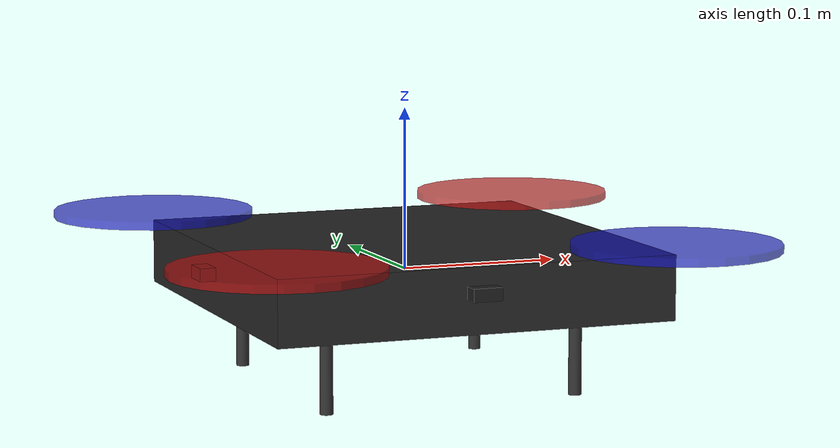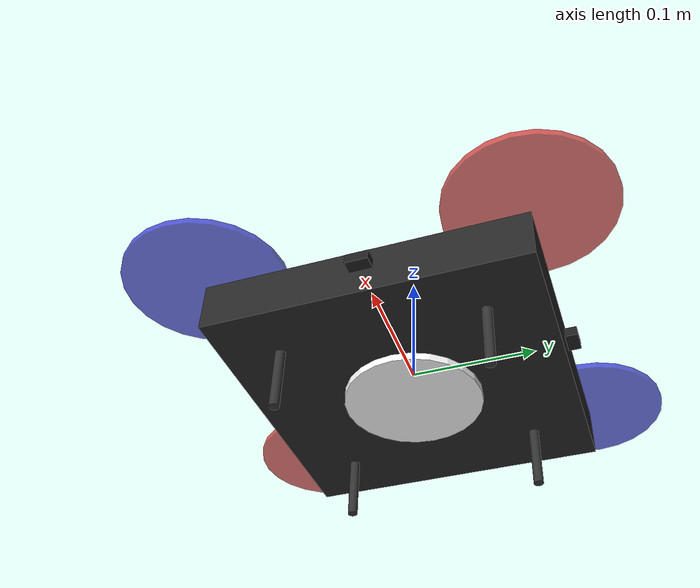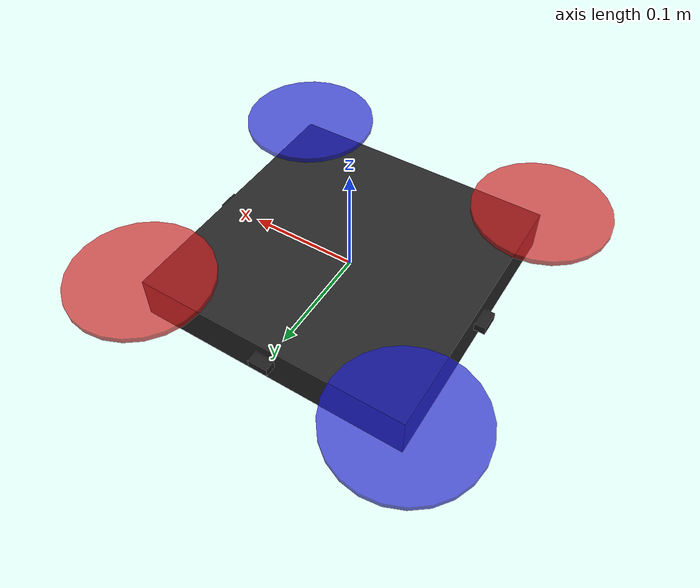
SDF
<?xml version="1.0" ?>
<sdf version="1.6">
  <model name="show_drone">

    <!-- Enable self-collide so rotors don't clip the body -->
    <self_collide>false</self_collide>
    <allow_auto_disable>false</allow_auto_disable>

    <!-- ================================================================
         BODY LINK — main airframe + battery
         ================================================================ -->
    <link name="base_link">
      <pose>0 0 0 0 0 0</pose>

      <!-- Inertia -->
      <inertial>
        <mass>0.85</mass>
        <pose>0 0 0 0 0 0</pose>
        <inertia>
          <ixx>3.2e-3</ixx>
          <ixy>0</ixy>
          <ixz>0</ixz>
          <iyy>3.2e-3</iyy>
          <iyz>0</iyz>
          <izz>5.5e-3</izz>
        </inertia>
      </inertial>

      <!-- Visual: main frame box approximation -->
      <visual name="frame_visual">
        <pose>0 0 0 0 0 0</pose>
        <geometry>
          <box>
            <size>0.25 0.25 0.04</size>
          </box>
        </geometry>
        <material>
          <ambient>0.1 0.1 0.1 1</ambient>
          <diffuse>0.15 0.15 0.15 1</diffuse>
          <specular>0.05 0.05 0.05 1</specular>
        </material>
      </visual>

      <!-- Visual: arm cross (simplified) -->
      <visual name="arm_visual_x">
        <pose>0 0 0.005 0 0 0</pose>
        <geometry>
          <box>
            <size>0.27 0.018 0.008</size>
          </box>
        </geometry>
        <material>
          <ambient>0.08 0.08 0.08 1</ambient>
          <diffuse>0.12 0.12 0.12 1</diffuse>
        </material>
      </visual>
      <visual name="arm_visual_y">
        <pose>0 0 0.005 0 0 1.5708</pose>
        <geometry>
          <box>
            <size>0.27 0.018 0.008</size>
          </box>
        </geometry>
        <material>
          <ambient>0.08 0.08 0.08 1</ambient>
          <diffuse>0.12 0.12 0.12 1</diffuse>
        </material>
      </visual>

      <!-- Collision: simplified box -->
      <collision name="base_collision">
        <pose>0 0 0 0 0 0</pose>
        <geometry>
          <box>
            <size>0.27 0.27 0.07</size>
          </box>
        </geometry>
        <surface>
          <contact>
            <ode>
              <min_depth>0.001</min_depth>
              <kp>1e6</kp>
              <kd>1e3</kd>
            </ode>
          </contact>
          <friction>
            <ode>
              <mu>0.3</mu>
              <mu2>0.3</mu2>
            </ode>
          </friction>
        </surface>
      </collision>

      <!-- IMU sensor -->
      <sensor name="imu_sensor" type="imu">
        <pose>0 0 0 0 0 0</pose>
        <always_on>true</always_on>
        <update_rate>1000</update_rate>
        <visualize>false</visualize>
        <imu>
          <angular_velocity>
            <x>
              <noise type="gaussian">
                <mean>0.0</mean>
                <stddev>2.0e-4</stddev>
                <bias_mean>7.5e-6</bias_mean>
                <bias_stddev>8e-7</bias_stddev>
              </noise>
            </x>
            <y>
              <noise type="gaussian">
                <mean>0.0</mean>
                <stddev>2.0e-4</stddev>
                <bias_mean>7.5e-6</bias_mean>
                <bias_stddev>8e-7</bias_stddev>
              </noise>
            </y>
            <z>
              <noise type="gaussian">
                <mean>0.0</mean>
                <stddev>2.0e-4</stddev>
                <bias_mean>7.5e-6</bias_mean>
                <bias_stddev>8e-7</bias_stddev>
              </noise>
            </z>
          </angular_velocity>
          <linear_acceleration>
            <x>
              <noise type="gaussian">
                <mean>0.0</mean>
                <stddev>0.017</stddev>
                <bias_mean>0.1</bias_mean>
                <bias_stddev>0.001</bias_stddev>
              </noise>
            </x>
            <y>
              <noise type="gaussian">
                <mean>0.0</mean>
                <stddev>0.017</stddev>
                <bias_mean>0.1</bias_mean>
                <bias_stddev>0.001</bias_stddev>
              </noise>
            </y>
            <z>
              <noise type="gaussian">
                <mean>0.0</mean>
                <stddev>0.017</stddev>
                <bias_mean>0.1</bias_mean>
                <bias_stddev>0.001</bias_stddev>
              </noise>
            </z>
          </linear_acceleration>
        </imu>
      </sensor>

      <!-- GPS sensor (RTK-grade noise) -->
      <sensor name="gps" type="gps">
        <pose>0 0 0.02 0 0 0</pose>
        <always_on>true</always_on>
        <update_rate>10</update_rate>
        <visualize>false</visualize>
        <gps>
          <position_sensing>
            <horizontal>
              <noise type="gaussian">
                <mean>0.0</mean>
                <stddev>0.10</stddev>   <!-- 10 cm horizontal RTK -->
              </noise>
            </horizontal>
            <vertical>
              <noise type="gaussian">
                <mean>0.0</mean>
                <stddev>0.15</stddev>   <!-- 15 cm vertical -->
              </noise>
            </vertical>
          </position_sensing>
          <velocity_sensing>
            <horizontal>
              <noise type="gaussian">
                <mean>0.0</mean>
                <stddev>0.05</stddev>
              </noise>
            </horizontal>
            <vertical>
              <noise type="gaussian">
                <mean>0.0</mean>
                <stddev>0.05</stddev>
              </noise>
            </vertical>
          </velocity_sensing>
        </gps>
      </sensor>

    </link>

    <!-- === ROTOR 1: front-right (+x, -y), CW spinning === -->
    <link name="rotor_1">
      <pose>0.125 -0.125 0.025 0 0 0</pose>
      <inertial>
        <mass>0.015</mass>
        <inertia>
          <ixx>9.75e-7</ixx><ixy>0</ixy><ixz>0</ixz>
          <iyy>1.66e-5</iyy><iyz>0</iyz>
          <izz>1.66e-5</izz>
        </inertia>
      </inertial>
      <visual name="rotor_1_visual">
        <pose>0 0 0 0 0 0</pose>
        <geometry>
          <cylinder>
            <length>0.005</length>
            <radius>0.0635</radius>   <!-- 5-inch prop radius -->
          </cylinder>
        </geometry>
        <material>
          <ambient>0.05 0.05 0.5 0.7</ambient>
          <diffuse>0.1 0.1 0.8 0.7</diffuse>
        </material>
      </visual>
      <collision name="rotor_1_collision">
        <pose>0 0 0 0 0 0</pose>
        <geometry>
          <cylinder>
            <length>0.005</length>
            <radius>0.0635</radius>
          </cylinder>
        </geometry>
      </collision>
    </link>

    <joint name="rotor_1_joint" type="revolute">
      <parent>base_link</parent>
      <child>rotor_1</child>
      <axis>
        <xyz>0 0 1</xyz>
        <limit>
          <lower>-1e16</lower>
          <upper>1e16</upper>
        </limit>
        <dynamics>
          <damping>0.004</damping>
        </dynamics>
        <use_parent_model_frame>true</use_parent_model_frame>
      </axis>
    </joint>

    <!-- === ROTOR 2: back-left (-x, +y), CW spinning === -->
    <link name="rotor_2">
      <pose>-0.125 0.125 0.025 0 0 0</pose>
      <inertial>
        <mass>0.015</mass>
        <inertia>
          <ixx>9.75e-7</ixx><ixy>0</ixy><ixz>0</ixz>
          <iyy>1.66e-5</iyy><iyz>0</iyz>
          <izz>1.66e-5</izz>
        </inertia>
      </inertial>
      <visual name="rotor_2_visual">
        <geometry>
          <cylinder>
            <length>0.005</length>
            <radius>0.0635</radius>
          </cylinder>
        </geometry>
        <material>
          <ambient>0.05 0.05 0.5 0.7</ambient>
          <diffuse>0.1 0.1 0.8 0.7</diffuse>
        </material>
      </visual>
      <collision name="rotor_2_collision">
        <geometry>
          <cylinder>
            <length>0.005</length>
            <radius>0.0635</radius>
          </cylinder>
        </geometry>
      </collision>
    </link>

    <joint name="rotor_2_joint" type="revolute">
      <parent>base_link</parent>
      <child>rotor_2</child>
      <axis>
        <xyz>0 0 1</xyz>
        <limit><lower>-1e16</lower><upper>1e16</upper></limit>
        <dynamics><damping>0.004</damping></dynamics>
        <use_parent_model_frame>true</use_parent_model_frame>
      </axis>
    </joint>

    <!-- === ROTOR 3: front-left (+x, +y), CCW spinning === -->
    <link name="rotor_3">
      <pose>0.125 0.125 0.025 0 0 0</pose>
      <inertial>
        <mass>0.015</mass>
        <inertia>
          <ixx>9.75e-7</ixx><ixy>0</ixy><ixz>0</ixz>
          <iyy>1.66e-5</iyy><iyz>0</iyz>
          <izz>1.66e-5</izz>
        </inertia>
      </inertial>
      <visual name="rotor_3_visual">
        <geometry>
          <cylinder>
            <length>0.005</length>
            <radius>0.0635</radius>
          </cylinder>
        </geometry>
        <material>
          <ambient>0.5 0.05 0.05 0.7</ambient>
          <diffuse>0.8 0.1 0.1 0.7</diffuse>
        </material>
      </visual>
      <collision name="rotor_3_collision">
        <geometry>
          <cylinder>
            <length>0.005</length>
            <radius>0.0635</radius>
          </cylinder>
        </geometry>
      </collision>
    </link>

    <joint name="rotor_3_joint" type="revolute">
      <parent>base_link</parent>
      <child>rotor_3</child>
      <axis>
        <xyz>0 0 -1</xyz>   <!-- CCW -->
        <limit><lower>-1e16</lower><upper>1e16</upper></limit>
        <dynamics><damping>0.004</damping></dynamics>
        <use_parent_model_frame>true</use_parent_model_frame>
      </axis>
    </joint>

    <!-- === ROTOR 4: back-right (-x, -y), CCW spinning === -->
    <link name="rotor_4">
      <pose>-0.125 -0.125 0.025 0 0 0</pose>
      <inertial>
        <mass>0.015</mass>
        <inertia>
          <ixx>9.75e-7</ixx><ixy>0</ixy><ixz>0</ixz>
          <iyy>1.66e-5</iyy><iyz>0</iyz>
          <izz>1.66e-5</izz>
        </inertia>
      </inertial>
      <visual name="rotor_4_visual">
        <geometry>
          <cylinder>
            <length>0.005</length>
            <radius>0.0635</radius>
          </cylinder>
        </geometry>
        <material>
          <ambient>0.5 0.05 0.05 0.7</ambient>
          <diffuse>0.8 0.1 0.1 0.7</diffuse>
        </material>
      </visual>
      <collision name="rotor_4_collision">
        <geometry>
          <cylinder>
            <length>0.005</length>
            <radius>0.0635</radius>
          </cylinder>
        </geometry>
      </collision>
    </link>

    <joint name="rotor_4_joint" type="revolute">
      <parent>base_link</parent>
      <child>rotor_4</child>
      <axis>
        <xyz>0 0 -1</xyz>   <!-- CCW -->
        <limit><lower>-1e16</lower><upper>1e16</upper></limit>
        <dynamics><damping>0.004</damping></dynamics>
        <use_parent_model_frame>true</use_parent_model_frame>
      </axis>
    </joint>

    <link name="led_payload">
      <pose>0 0 -0.025 0 0 0</pose>
      <inertial>
        <mass>0.02</mass>
        <inertia>
          <ixx>1.0e-5</ixx><ixy>0</ixy><ixz>0</ixz>
          <iyy>1.0e-5</iyy><iyz>0</iyz>
          <izz>1.8e-5</izz>
        </inertia>
      </inertial>

      <!-- Visual: ring approximated as a thin torus (cylinder in SDF) -->
      <visual name="led_ring_visual">
        <pose>0 0 0 0 0 0</pose>
        <geometry>
          <cylinder>
            <length>0.006</length>
            <radius>0.055</radius>
          </cylinder>
        </geometry>
        <material>
          <!-- Default white; colour is overridden at runtime by the LED plugin -->
          <ambient>1.0 1.0 1.0 1.0</ambient>
          <diffuse>1.0 1.0 1.0 1.0</diffuse>
          <specular>0.5 0.5 0.5 1.0</specular>
          <emissive>1.0 1.0 1.0 1.0</emissive>
        </material>
      </visual>

      <!-- Collision: small disk -->
      <collision name="led_collision">
        <pose>0 0 0 0 0 0</pose>
        <geometry>
          <cylinder>
            <length>0.006</length>
            <radius>0.055</radius>
          </cylinder>
        </geometry>
      </collision>
    </link>

    <joint name="led_joint" type="fixed">
      <parent>base_link</parent>
      <child>led_payload</child>
    </joint>

    <!-- ================================================================
         LANDING GEAR — 4 legs at corners
         ================================================================ -->
    <link name="leg_fl">
      <pose>0.08 0.08 -0.04 0 0 0</pose>
      <inertial><mass>0.005</mass><inertia>
        <ixx>1e-7</ixx><ixy>0</ixy><ixz>0</ixz>
        <iyy>1e-7</iyy><iyz>0</iyz><izz>1e-7</izz>
      </inertia></inertial>
      <visual name="leg_fl_v"><geometry><cylinder>
        <length>0.06</length><radius>0.004</radius>
      </cylinder></geometry><material><ambient>0.2 0.2 0.2 1</ambient></material></visual>
      <collision name="leg_fl_c"><geometry><cylinder>
        <length>0.06</length><radius>0.004</radius>
      </cylinder></geometry>
      <surface><contact><ode><kp>1e6</kp><kd>100</kd></ode></contact></surface>
      </collision>
    </link>
    <joint name="leg_fl_j" type="fixed"><parent>base_link</parent><child>leg_fl</child></joint>

    <link name="leg_fr">
      <pose>0.08 -0.08 -0.04 0 0 0</pose>
      <inertial><mass>0.005</mass><inertia>
        <ixx>1e-7</ixx><ixy>0</ixy><ixz>0</ixz>
        <iyy>1e-7</iyy><iyz>0</iyz><izz>1e-7</izz>
      </inertia></inertial>
      <visual name="leg_fr_v"><geometry><cylinder>
        <length>0.06</length><radius>0.004</radius>
      </cylinder></geometry><material><ambient>0.2 0.2 0.2 1</ambient></material></visual>
      <collision name="leg_fr_c"><geometry><cylinder>
        <length>0.06</length><radius>0.004</radius>
      </cylinder></geometry>
      <surface><contact><ode><kp>1e6</kp><kd>100</kd></ode></contact></surface>
      </collision>
    </link>
    <joint name="leg_fr_j" type="fixed"><parent>base_link</parent><child>leg_fr</child></joint>

    <link name="leg_rl">
      <pose>-0.08 0.08 -0.04 0 0 0</pose>
      <inertial><mass>0.005</mass><inertia>
        <ixx>1e-7</ixx><ixy>0</ixy><ixz>0</ixz>
        <iyy>1e-7</iyy><iyz>0</iyz><izz>1e-7</izz>
      </inertia></inertial>
      <visual name="leg_rl_v"><geometry><cylinder>
        <length>0.06</length><radius>0.004</radius>
      </cylinder></geometry><material><ambient>0.2 0.2 0.2 1</ambient></material></visual>
      <collision name="leg_rl_c"><geometry><cylinder>
        <length>0.06</length><radius>0.004</radius>
      </cylinder></geometry>
      <surface><contact><ode><kp>1e6</kp><kd>100</kd></ode></contact></surface>
      </collision>
    </link>
    <joint name="leg_rl_j" type="fixed"><parent>base_link</parent><child>leg_rl</child></joint>

    <link name="leg_rr">
      <pose>-0.08 -0.08 -0.04 0 0 0</pose>
      <inertial><mass>0.005</mass><inertia>
        <ixx>1e-7</ixx><ixy>0</ixy><ixz>0</ixz>
        <iyy>1e-7</iyy><iyz>0</iyz><izz>1e-7</izz>
      </inertia></inertial>
      <visual name="leg_rr_v"><geometry><cylinder>
        <length>0.06</length><radius>0.004</radius>
      </cylinder></geometry><material><ambient>0.2 0.2 0.2 1</ambient></material></visual>
      <collision name="leg_rr_c"><geometry><cylinder>
        <length>0.06</length><radius>0.004</radius>
      </cylinder></geometry>
      <surface><contact><ode><kp>1e6</kp><kd>100</kd></ode></contact></surface>
      </collision>
    </link>
    <joint name="leg_rr_j" type="fixed"><parent>base_link</parent><child>leg_rr</child></joint>

    <!-- Rotor 1: CW (turning direction = -1) -->
    <plugin name="rotor_1_motor" filename="libgazebo_motor_model.so">
      <robotNamespace></robotNamespace>
      <jointName>rotor_1_joint</jointName>
      <linkName>rotor_1</linkName>
      <turningDirection>cw</turningDirection>
      <timeConstantUp>0.0125</timeConstantUp>
      <timeConstantDown>0.025</timeConstantDown>
      <maxRotVelocity>1047.2</maxRotVelocity>        <!-- ~10,000 RPM in rad/s -->
      <motorConstant>8.54858e-6</motorConstant>
      <momentConstant>1.3677e-7</momentConstant>
      <commandSubTopic>/gazebo/command/motor_speed</commandSubTopic>
      <motorNumber>0</motorNumber>
      <rotorDragCoefficient>8.06428e-5</rotorDragCoefficient>
      <rollingMomentCoefficient>1e-6</rollingMomentCoefficient>
      <motorSpeedPubTopic>/motor_speed/0</motorSpeedPubTopic>
    </plugin>

    <!-- Rotor 2: CW -->
    <plugin name="rotor_2_motor" filename="libgazebo_motor_model.so">
      <robotNamespace></robotNamespace>
      <jointName>rotor_2_joint</jointName>
      <linkName>rotor_2</linkName>
      <turningDirection>cw</turningDirection>
      <timeConstantUp>0.0125</timeConstantUp>
      <timeConstantDown>0.025</timeConstantDown>
      <maxRotVelocity>1047.2</maxRotVelocity>
      <motorConstant>8.54858e-6</motorConstant>
      <momentConstant>1.3677e-7</momentConstant>
      <commandSubTopic>/gazebo/command/motor_speed</commandSubTopic>
      <motorNumber>1</motorNumber>
      <rotorDragCoefficient>8.06428e-5</rotorDragCoefficient>
      <rollingMomentCoefficient>1e-6</rollingMomentCoefficient>
      <motorSpeedPubTopic>/motor_speed/1</motorSpeedPubTopic>
    </plugin>

    <!-- Rotor 3: CCW -->
    <plugin name="rotor_3_motor" filename="libgazebo_motor_model.so">
      <robotNamespace></robotNamespace>
      <jointName>rotor_3_joint</jointName>
      <linkName>rotor_3</linkName>
      <turningDirection>ccw</turningDirection>
      <timeConstantUp>0.0125</timeConstantUp>
      <timeConstantDown>0.025</timeConstantDown>
      <maxRotVelocity>1047.2</maxRotVelocity>
      <motorConstant>8.54858e-6</motorConstant>
      <momentConstant>1.3677e-7</momentConstant>
      <commandSubTopic>/gazebo/command/motor_speed</commandSubTopic>
      <motorNumber>2</motorNumber>
      <rotorDragCoefficient>8.06428e-5</rotorDragCoefficient>
      <rollingMomentCoefficient>1e-6</rollingMomentCoefficient>
      <motorSpeedPubTopic>/motor_speed/2</motorSpeedPubTopic>
    </plugin>

    <!-- Rotor 4: CCW -->
    <plugin name="rotor_4_motor" filename="libgazebo_motor_model.so">
      <robotNamespace></robotNamespace>
      <jointName>rotor_4_joint</jointName>
      <linkName>rotor_4</linkName>
      <turningDirection>ccw</turningDirection>
      <timeConstantUp>0.0125</timeConstantUp>
      <timeConstantDown>0.025</timeConstantDown>
      <maxRotVelocity>1047.2</maxRotVelocity>
      <motorConstant>8.54858e-6</motorConstant>
      <momentConstant>1.3677e-7</momentConstant>
      <commandSubTopic>/gazebo/command/motor_speed</commandSubTopic>
      <motorNumber>3</motorNumber>
      <rotorDragCoefficient>8.06428e-5</rotorDragCoefficient>
      <rollingMomentCoefficient>1e-6</rollingMomentCoefficient>
      <motorSpeedPubTopic>/motor_speed/3</motorSpeedPubTopic>
    </plugin>

    <plugin name="multirotor_base" filename="libgazebo_multirotor_base_plugin.so">
      <robotNamespace></robotNamespace>
      <commandSubTopic>/gazebo/command/motor_speed</commandSubTopic>
      <odometrySubTopic>odometry_sensor1</odometrySubTopic>
      <odometryPubTopic>odometry</odometryPubTopic>
      <odometryFrameId>odom</odometryFrameId>
      <childFrameId>base_link</childFrameId>
    </plugin>

    <!-- ================================================================
         IMU PLUGIN
         ================================================================ -->
    <plugin name="imu_plugin" filename="libgazebo_imu_plugin.so">
      <robotNamespace></robotNamespace>
      <linkName>base_link</linkName>
      <imuTopic>/imu</imuTopic>
      <gyroscopeNoiseDensity>0.0003394</gyroscopeNoiseDensity>
      <gyroscopeRandomWalk>3.8785e-5</gyroscopeRandomWalk>
      <gyroscopeBiasCorrelationTime>1000.0</gyroscopeBiasCorrelationTime>
      <gyroscopeTurnOnBiasSigma>8.7266e-5</gyroscopeTurnOnBiasSigma>
      <accelerometerNoiseDensity>0.004</accelerometerNoiseDensity>
      <accelerometerRandomWalk>6.0e-4</accelerometerRandomWalk>
      <accelerometerBiasCorrelationTime>300.0</accelerometerBiasCorrelationTime>
      <accelerometerTurnOnBiasSigma>0.196</accelerometerTurnOnBiasSigma>
    </plugin>

    <!-- ================================================================
         GPS PLUGIN
         ================================================================ -->
    <plugin name="gps_plugin" filename="libgazebo_gps_plugin.so">
      <robotNamespace></robotNamespace>
      <gpsTopic>/gps</gpsTopic>
      <gpsVelTopic>/gps_vel</gpsVelTopic>
      <updateRate>10</updateRate>
      <horPosStdDev>0.10</horPosStdDev>    <!-- RTK-grade, ~10 cm -->
      <verPosStdDev>0.15</verPosStdDev>
      <horVelStdDev>0.05</horVelStdDev>
      <verVelStdDev>0.05</verVelStdDev>
    </plugin>

  </model>
</sdf>
